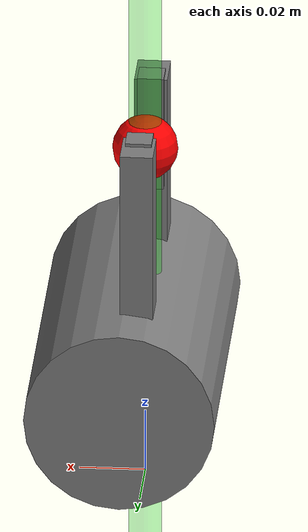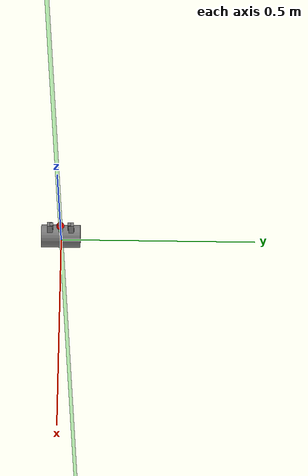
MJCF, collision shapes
<mujoco model="base">
    <asset>
        <mesh name="electric_gripper_base" file="meshes/rethink_gripper/electric_gripper_base.stl" />
        <mesh name="standard_narrow" file="meshes/rethink_gripper/standard_narrow.stl" />
        <mesh name="half_round_tip" file="meshes/rethink_gripper/half_round_tip.stl" />
        <mesh name="connector_plate" file="meshes/rethink_gripper/connector_plate.stl" />

        <!-- Custom textures based on body names for domain randomization -->
        <texture type="cube" name="connector_plate_tex" builtin="flat" width="100" height="100" rgb1="0.5 0.5 0.5" rgb2="0.5 0.5 0.5"/>
        <texture type="cube" name="electric_gripper_base_tex" builtin="flat" width="100" height="100" rgb1="0.5 0.5 0.5" rgb2="0.5 0.5 0.5"/>
        <texture type="cube" name="finger_tex" builtin="flat" width="100" height="100" rgb1="0.5 0.5 0.5" rgb2="0.5 0.5 0.5"/>
        <texture type="cube" name="tip_tex" builtin="flat" width="100" height="100" rgb1="0.5 0.5 0.5" rgb2="0.5 0.5 0.5"/>

        <!-- Custom mats based on body names for domain randomization -->
        <material name="connector_plate_mat" texture="connector_plate_tex"/>
        <material name="electric_gripper_base_mat" texture="electric_gripper_base_tex"/>
        <material name="finger_mat" texture="finger_tex"/>
        <material name="tip_mat" texture="tip_tex"/>
    </asset>
    <actuator>
        <position ctrllimited="true" ctrlrange="-0.0115 0.020833" joint="r_finger_joint" kp="10000" name="gripper_r_finger_joint" forcelimited="true" forcerange="-20 20"/>
        <position ctrllimited="true" ctrlrange="-0.020833 0.0115" joint="l_finger_joint" kp="10000" name="gripper_l_finger_joint" forcelimited="true" forcerange="-20 20"/>
    </actuator>

    <worldbody>
        <body name="gripper_base" pos="0 0 0">
            <site name="ft_frame" pos="0 0 0" size="0.01 0.01 0.01" rgba="1 0 0 1" type="sphere" group="1"/>
            <inertial pos="0 0 0" quat="-0.5 0.5 0.5 0.5" mass="0.3" diaginertia="3e-08 2e-08 2e-08" />
            <geom type="mesh" contype="0" conaffinity="0" group="1" mesh="connector_plate" name="connector_plate" pos="0 0 0.0018" material="connector_plate_mat"/>
            <geom type="mesh" contype="0" conaffinity="0" group="1" mesh="electric_gripper_base" name="electric_gripper_base" pos="0 0 0.0194" material="electric_gripper_base_mat"/>
            <geom size="0.029 0.05" quat="0 0 0.707107 0.707107" type="cylinder" pos="0.004 0.0 0.04"/>
            <!-- This site was added for visualization. -->
            <site name="grip_site" pos="0 0 0.109" size="0.01 0.01 0.01" rgba="1 0 0 1" type="sphere" group="1"/>
            <!-- This site was added for visualization. -->
            <site name="grip_site_cylinder" pos="0 0 0" size="0.005 10" rgba="0 1 0 0.3" type="cylinder" group="1"/>
            <body name="l_finger" pos="0 0.01 0.0444">
                <inertial pos="0 0 0" quat="0 0 0 -1" mass="0.02" diaginertia="0.01 0.01 0.01" />
                <joint name="l_finger_joint" pos="0 0 0" axis="0 1 0" type="slide" limited="true" range="-0.0115 0.020833" damping="100"/>
                <geom name="l_finger" quat="0 0 0 -1" type="mesh" contype="0" conaffinity="0" group="1" mesh="standard_narrow" material="finger_mat"/>
                <geom size="0.005 0.00675 0.0375" pos="0 0.01725 0.04" quat="0 0 0 -1" type="box" conaffinity="1" contype="0" name="l_finger_g0" friction="0 0 0"/>
                <geom size="0.005 0.025 0.0085" pos="-0.005 -0.003 0.0083" quat="0 0 0 -1" type="box" conaffinity="1" contype="0" name="l_finger_g1" friction="0 0 0"/>
                <body name="l_finger_tip" pos="0 0.01725 0.075">
                    <inertial pos="0 0 0" quat="0 0 0 1" mass="0.01" diaginertia="0.01 0.01 0.01" />
                    <geom name="l_fingertip_g0_vis" quat="0 0 0 1" type="mesh" contype="0" conaffinity="0" group="1" mesh="half_round_tip" material="tip_mat"/>
                    <geom size="0.004 0.004 0.0185" pos="0 -0.0045 -0.015" quat="0 0 0 -1" type="box"  conaffinity="1" contype="0" name="l_fingertip_g0" friction="0 0 0"/>
                </body>
            </body>
            <body name="r_finger" pos="0 -0.01 0.0444">
                <inertial pos="0 0 0" mass="0.02" diaginertia="0.01 0.01 0.01" />
                <joint name="r_finger_joint" pos="0 0 0" axis="0 1 0" type="slide" limited="true" range="-0.020833 0.0115" damping="100"/>
                <geom name="r_finger" type="mesh" contype="0" conaffinity="0" group="1" mesh="standard_narrow" material="finger_mat"/>
                <geom size="0.005 0.00675 0.0375" pos="0 -0.01725 0.04" type="box" conaffinity="1" contype="0" name="r_finger_g0" friction="0 0 0"/>
                <geom size="0.005 0.025 0.0085" pos="0.005 0.003 0.0083" type="box" conaffinity="1" contype="0" name="r_finger_g1" friction="0 0 0"/>
                <body name="r_finger_tip" pos="0 -0.01725 0.075">
                    <inertial pos="0 0 0" mass="0.01" diaginertia="0.01 0.01 0.01" />
                    <geom name="r_fingertip_g0_vis" type="mesh" contype="0" conaffinity="0" group="1" mesh="half_round_tip" material="tip_mat"/>
                    <geom size="0.004 0.004 0.0185" pos="0 0.0045 -0.015" type="box"  conaffinity="1" contype="0" name="r_fingertip_g0" friction="0 0 0"/>
                </body>
            </body>
        </body>
    </worldbody>
    <sensor>
        <force name="force_ee" site="ft_frame"/>
        <torque name="torque_ee" site="ft_frame"/>
    </sensor>
</mujoco>
